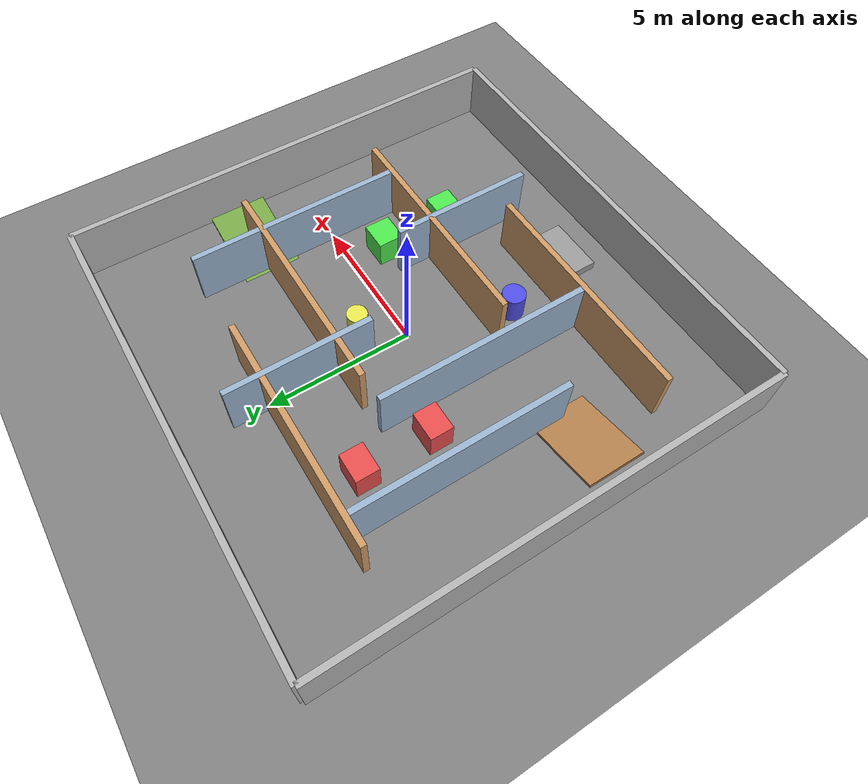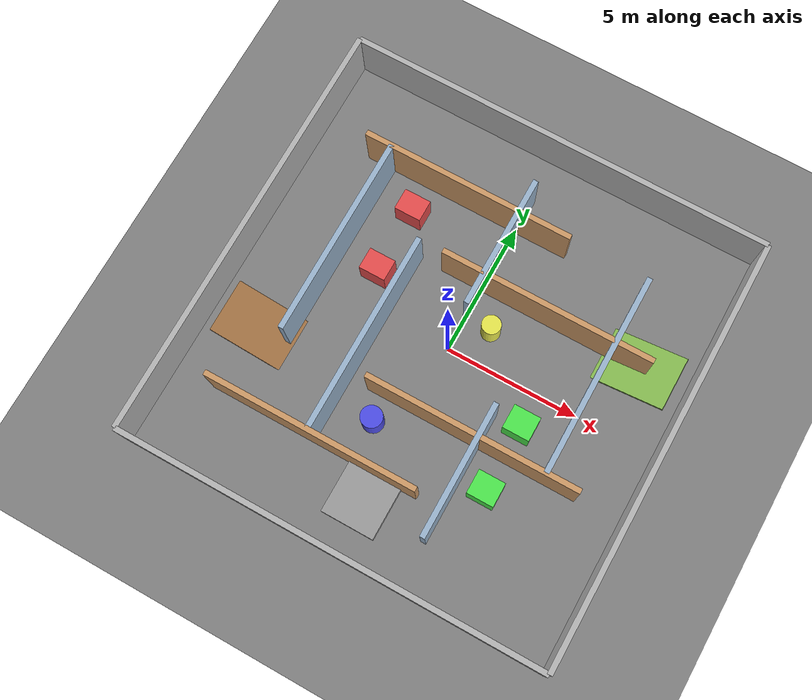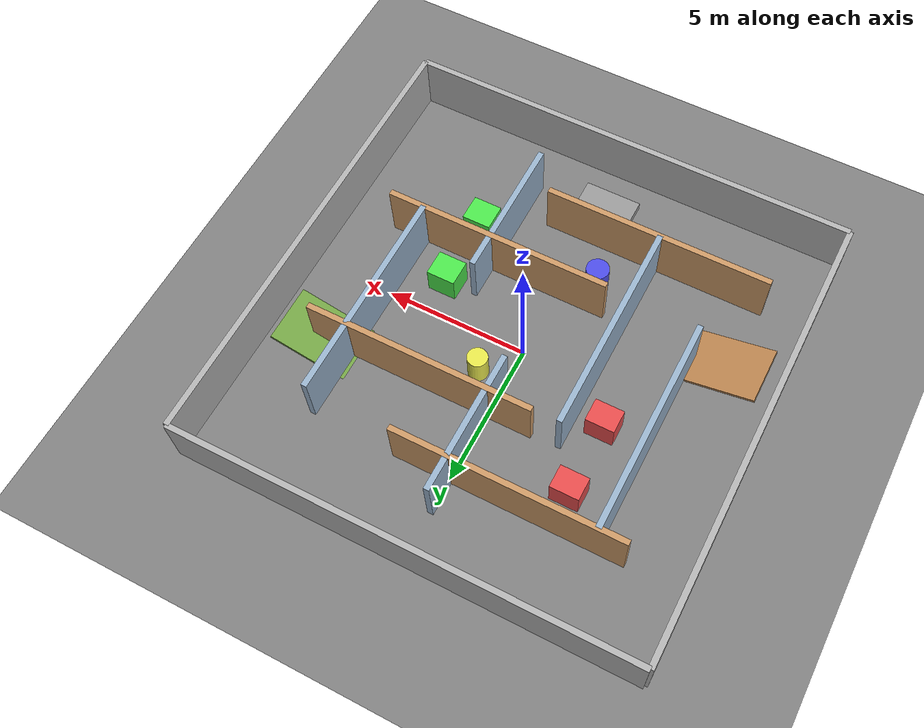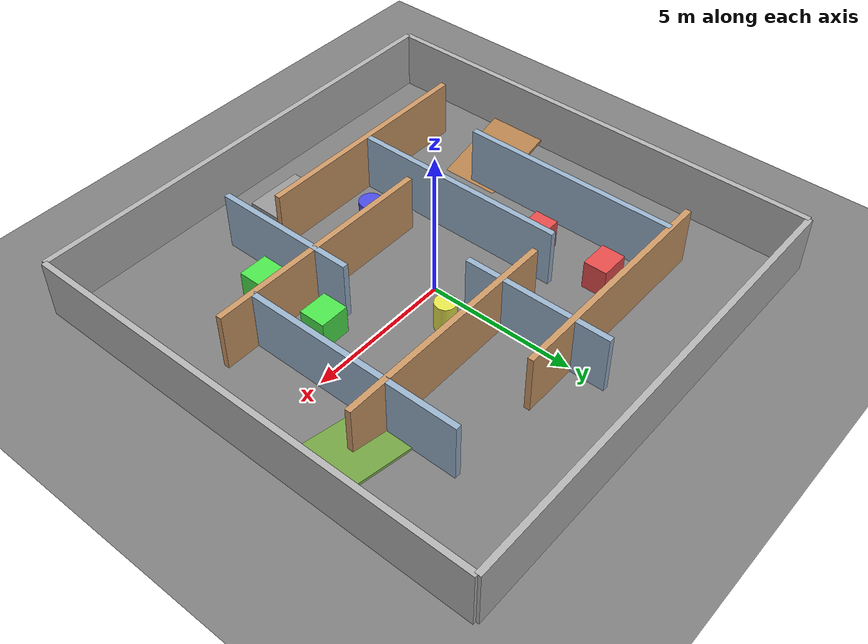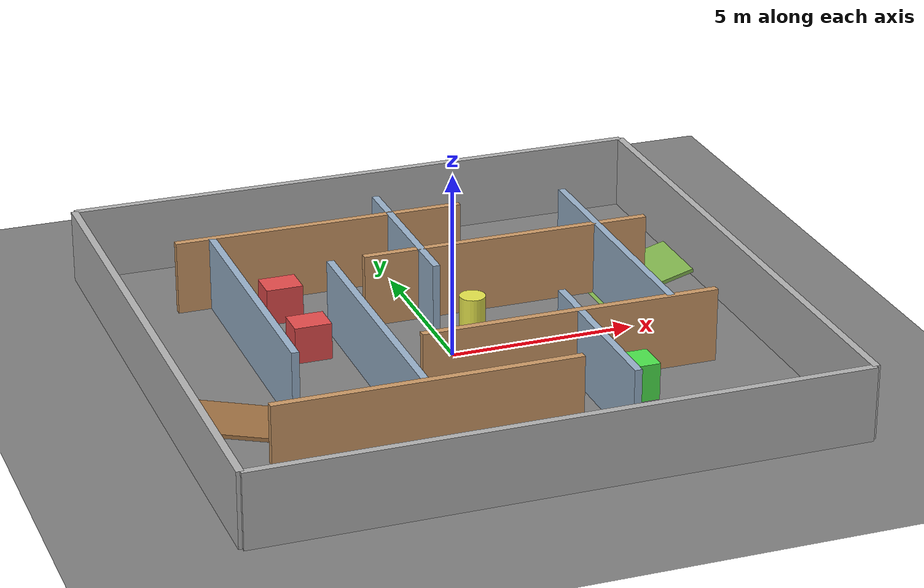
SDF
<?xml version="1.0" ?>
<sdf version="1.8">
  <world name="maze_world">
    <physics name="1ms" type="bullet-featherstone">
      <max_step_size>0.001</max_step_size>
      <real_time_factor>1.0</real_time_factor>
    </physics>

    <!-- Plugins -->
    <plugin
      filename="gz-sim-physics-system"
      name="gz::sim::systems::Physics">
    </plugin>
    <plugin
      filename="gz-sim-sensors-system"
      name="gz::sim::systems::Sensors">
      <render_engine>ogre2</render_engine>
    </plugin>
    <plugin
      filename="gz-sim-user-commands-system"
      name="gz::sim::systems::UserCommands">
    </plugin>
    <plugin
      filename="gz-sim-scene-broadcaster-system"
      name="gz::sim::systems::SceneBroadcaster">
    </plugin>

    <!-- Lights -->
    <light type="directional" name="sun">
      <cast_shadows>true</cast_shadows>
      <pose>0 0 10 0 0 0</pose>
      <diffuse>0.8 0.8 0.8 1</diffuse>
      <specular>0.2 0.2 0.2 1</specular>
      <attenuation>
        <range>1000</range>
        <constant>0.9</constant>
        <linear>0.01</linear>
        <quadratic>0.001</quadratic>
      </attenuation>
      <direction>-0.5 0.1 -0.9</direction>
    </light>

    <!-- Ground Plane -->
    <model name="ground_plane">
      <static>true</static>
      <link name="link">
        <collision name="collision">
          <geometry>
            <plane>
              <normal>0 0 1</normal>
              <size>100 100</size>
            </plane>
          </geometry>
        </collision>
        <visual name="visual">
          <geometry>
            <plane>
              <normal>0 0 1</normal>
              <size>100 100</size>
            </plane>
          </geometry>
          <material>
            <ambient>0.5 0.5 0.5 1</ambient>
            <diffuse>0.5 0.5 0.5 1</diffuse>
            <specular>0.5 0.5 0.5 1</specular>
          </material>
        </visual>
      </link>
    </model>

    <!-- Outer Boundary Walls -->
    <!-- North Wall -->
    <model name="wall_north">
      <pose>0 8 1 0 0 0</pose>
      <static>true</static>
      <link name="link">
        <collision name="collision">
          <geometry>
            <box>
              <size>16 0.2 2</size>
            </box>
          </geometry>
        </collision>
        <visual name="visual">
          <geometry>
            <box>
              <size>16 0.2 2</size>
            </box>
          </geometry>
          <material>
            <ambient>0.7 0.7 0.7 1</ambient>
            <diffuse>0.7 0.7 0.7 1</diffuse>
            <specular>0.7 0.7 0.7 1</specular>
          </material>
        </visual>
      </link>
    </model>

    <!-- South Wall -->
    <model name="wall_south">
      <pose>0 -8 1 0 0 0</pose>
      <static>true</static>
      <link name="link">
        <collision name="collision">
          <geometry>
            <box>
              <size>16 0.2 2</size>
            </box>
          </geometry>
        </collision>
        <visual name="visual">
          <geometry>
            <box>
              <size>16 0.2 2</size>
            </box>
          </geometry>
          <material>
            <ambient>0.7 0.7 0.7 1</ambient>
            <diffuse>0.7 0.7 0.7 1</diffuse>
            <specular>0.7 0.7 0.7 1</specular>
          </material>
        </visual>
      </link>
    </model>

    <!-- East Wall -->
    <model name="wall_east">
      <pose>8 0 1 0 0 0</pose>
      <static>true</static>
      <link name="link">
        <collision name="collision">
          <geometry>
            <box>
              <size>0.2 16 2</size>
            </box>
          </geometry>
        </collision>
        <visual name="visual">
          <geometry>
            <box>
              <size>0.2 16 2</size>
            </box>
          </geometry>
          <material>
            <ambient>0.7 0.7 0.7 1</ambient>
            <diffuse>0.7 0.7 0.7 1</diffuse>
            <specular>0.7 0.7 0.7 1</specular>
          </material>
        </visual>
      </link>
    </model>

    <!-- West Wall -->
    <model name="wall_west">
      <pose>-8 0 1 0 0 0</pose>
      <static>true</static>
      <link name="link">
        <collision name="collision">
          <geometry>
            <box>
              <size>0.2 16 2</size>
            </box>
          </geometry>
        </collision>
        <visual name="visual">
          <geometry>
            <box>
              <size>0.2 16 2</size>
            </box>
          </geometry>
          <material>
            <ambient>0.7 0.7 0.7 1</ambient>
            <diffuse>0.7 0.7 0.7 1</diffuse>
            <specular>0.7 0.7 0.7 1</specular>
          </material>
        </visual>
      </link>
    </model>

    <!-- Maze Interior Walls - Creating narrow corridors -->
    <!-- Horizontal Wall 1 (Top section) -->
    <model name="maze_wall_h1">
      <pose>-2 5 1 0 0 0</pose>
      <static>true</static>
      <link name="link">
        <collision name="collision">
          <geometry>
            <box>
              <size>8 0.2 2</size>
            </box>
          </geometry>
        </collision>
        <visual name="visual">
          <geometry>
            <box>
              <size>8 0.2 2</size>
            </box>
          </geometry>
          <material>
            <ambient>0.8 0.6 0.4 1</ambient>
            <diffuse>0.8 0.6 0.4 1</diffuse>
            <specular>0.8 0.6 0.4 1</specular>
          </material>
        </visual>
      </link>
    </model>

    <!-- Horizontal Wall 2 -->
    <model name="maze_wall_h2">
      <pose>2.412 2.5 1 0 0 0</pose>
      <static>true</static>
      <link name="link">
        <collision name="collision">
          <geometry>
            <box>
              <size>8 0.2 2</size>
            </box>
          </geometry>
        </collision>
        <visual name="visual">
          <geometry>
            <box>
              <size>8 0.2 2</size>
            </box>
          </geometry>
          <material>
            <ambient>0.8 0.6 0.4 1</ambient>
            <diffuse>0.8 0.6 0.4 1</diffuse>
            <specular>0.8 0.6 0.4 1</specular>
          </material>
        </visual>
      </link>
    </model>

    <!-- Horizontal Wall 3 - REMOVED to keep origin clear for robot spawn -->

    <!-- Horizontal Wall 4 -->
    <model name="maze_wall_h4">
      <pose>2.265 -2.5 1 0 0 0</pose>
      <static>true</static>
      <link name="link">
        <collision name="collision">
          <geometry>
            <box>
              <size>8 0.2 2</size>
            </box>
          </geometry>
        </collision>
        <visual name="visual">
          <geometry>
            <box>
              <size>8 0.2 2</size>
            </box>
          </geometry>
          <material>
            <ambient>0.8 0.6 0.4 1</ambient>
            <diffuse>0.8 0.6 0.4 1</diffuse>
            <specular>0.8 0.6 0.4 1</specular>
          </material>
        </visual>
      </link>
    </model>

    <!-- Horizontal Wall 5 (Bottom section) -->
    <model name="maze_wall_h5">
      <pose>-2.415 -5 1 0 0 0</pose>
      <static>true</static>
      <link name="link">
        <collision name="collision">
          <geometry>
            <box>
              <size>8 0.2 2</size>
            </box>
          </geometry>
        </collision>
        <visual name="visual">
          <geometry>
            <box>
              <size>8 0.2 2</size>
            </box>
          </geometry>
          <material>
            <ambient>0.8 0.6 0.4 1</ambient>
            <diffuse>0.8 0.6 0.4 1</diffuse>
            <specular>0.8 0.6 0.4 1</specular>
          </material>
        </visual>
      </link>
    </model>

    <!-- Vertical Wall 1 (Left section) -->
    <model name="maze_wall_v1">
      <pose>-5 1.25 1 0 0 0</pose>
      <static>true</static>
      <link name="link">
        <collision name="collision">
          <geometry>
            <box>
              <size>0.2 7.5 2</size>
            </box>
          </geometry>
        </collision>
        <visual name="visual">
          <geometry>
            <box>
              <size>0.2 7.5 2</size>
            </box>
          </geometry>
          <material>
            <ambient>0.6 0.7 0.8 1</ambient>
            <diffuse>0.6 0.7 0.8 1</diffuse>
            <specular>0.6 0.7 0.8 1</specular>
          </material>
        </visual>
      </link>
    </model>

    <!-- Vertical Wall 2 -->
    <model name="maze_wall_v2">
      <pose>-2.5 -1.25 1 0 0 0</pose>
      <static>true</static>
      <link name="link">
        <collision name="collision">
          <geometry>
            <box>
              <size>0.2 7.5 2</size>
            </box>
          </geometry>
        </collision>
        <visual name="visual">
          <geometry>
            <box>
              <size>0.2 7.5 2</size>
            </box>
          </geometry>
          <material>
            <ambient>0.6 0.7 0.8 1</ambient>
            <diffuse>0.6 0.7 0.8 1</diffuse>
            <specular>0.6 0.7 0.8 1</specular>
          </material>
        </visual>
      </link>
    </model>

    <!-- Vertical Wall 3 (Center) -->
    <model name="maze_wall_v3">
      <pose>0 3.75 1 0 0 0</pose>
      <static>true</static>
      <link name="link">
        <collision name="collision">
          <geometry>
            <box>
              <size>0.2 5 2</size>
            </box>
          </geometry>
        </collision>
        <visual name="visual">
          <geometry>
            <box>
              <size>0.2 5 2</size>
            </box>
          </geometry>
          <material>
            <ambient>0.6 0.7 0.8 1</ambient>
            <diffuse>0.6 0.7 0.8 1</diffuse>
            <specular>0.6 0.7 0.8 1</specular>
          </material>
        </visual>
      </link>
    </model>

    <!-- Vertical Wall 4 -->
    <model name="maze_wall_v4">
      <pose>2.5 -3.75 1 0 0 0</pose>
      <static>true</static>
      <link name="link">
        <collision name="collision">
          <geometry>
            <box>
              <size>0.2 5 2</size>
            </box>
          </geometry>
        </collision>
        <visual name="visual">
          <geometry>
            <box>
              <size>0.2 5 2</size>
            </box>
          </geometry>
          <material>
            <ambient>0.6 0.7 0.8 1</ambient>
            <diffuse>0.6 0.7 0.8 1</diffuse>
            <specular>0.6 0.7 0.8 1</specular>
          </material>
        </visual>
      </link>
    </model>

    <!-- Vertical Wall 5 (Right section) -->
    <model name="maze_wall_v5">
      <pose>5 1.25 1 0 0 0</pose>
      <static>true</static>
      <link name="link">
        <collision name="collision">
          <geometry>
            <box>
              <size>0.2 7.5 2</size>
            </box>
          </geometry>
        </collision>
        <visual name="visual">
          <geometry>
            <box>
              <size>0.2 7.5 2</size>
            </box>
          </geometry>
          <material>
            <ambient>0.6 0.7 0.8 1</ambient>
            <diffuse>0.6 0.7 0.8 1</diffuse>
            <specular>0.6 0.7 0.8 1</specular>
          </material>
        </visual>
      </link>
    </model>

    <!-- Narrow Corridor Obstacles - Testing tight spaces -->
    <!-- Narrow passage 1 (0.9m wide) -->
    <model name="narrow_obstacle_1a">
      <pose>-3.5 3.75 0.5 0 0 0</pose>
      <static>true</static>
      <link name="link">
        <collision name="collision">
          <geometry>
            <box>
              <size>1 0.8 1</size>
            </box>
          </geometry>
        </collision>
        <visual name="visual">
          <geometry>
            <box>
              <size>1 0.8 1</size>
            </box>
          </geometry>
          <material>
            <ambient>0.9 0.3 0.3 1</ambient>
            <diffuse>0.9 0.3 0.3 1</diffuse>
            <specular>0.9 0.3 0.3 1</specular>
          </material>
        </visual>
      </link>
    </model>

    <model name="narrow_obstacle_1b">
      <pose>-3.5 1.25 0.5 0 0 0</pose>
      <static>true</static>
      <link name="link">
        <collision name="collision">
          <geometry>
            <box>
              <size>1 0.8 1</size>
            </box>
          </geometry>
        </collision>
        <visual name="visual">
          <geometry>
            <box>
              <size>1 0.8 1</size>
            </box>
          </geometry>
          <material>
            <ambient>0.9 0.3 0.3 1</ambient>
            <diffuse>0.9 0.3 0.3 1</diffuse>
            <specular>0.9 0.3 0.3 1</specular>
          </material>
        </visual>
      </link>
    </model>

    <!-- Narrow passage 2 (0.85m wide) -->
    <model name="narrow_obstacle_2a">
      <pose>3.5 -1.25 0.5 0 0 0</pose>
      <static>true</static>
      <link name="link">
        <collision name="collision">
          <geometry>
            <box>
              <size>1 0.9 1</size>
            </box>
          </geometry>
        </collision>
        <visual name="visual">
          <geometry>
            <box>
              <size>1 0.9 1</size>
            </box>
          </geometry>
          <material>
            <ambient>0.3 0.9 0.3 1</ambient>
            <diffuse>0.3 0.9 0.3 1</diffuse>
            <specular>0.3 0.9 0.3 1</specular>
          </material>
        </visual>
      </link>
    </model>

    <model name="narrow_obstacle_2b">
      <pose>3.5 -3.75 0.5 0 0 0</pose>
      <static>true</static>
      <link name="link">
        <collision name="collision">
          <geometry>
            <box>
              <size>1 0.9 1</size>
            </box>
          </geometry>
        </collision>
        <visual name="visual">
          <geometry>
            <box>
              <size>1 0.9 1</size>
            </box>
          </geometry>
          <material>
            <ambient>0.3 0.9 0.3 1</ambient>
            <diffuse>0.3 0.9 0.3 1</diffuse>
            <specular>0.3 0.9 0.3 1</specular>
          </material>
        </visual>
      </link>
    </model>

    <!-- Cylindrical obstacles for variety -->
    <model name="cylinder_obstacle_1">
      <pose>-1 -3.5 0.5 0 0 0</pose>
      <static>true</static>
      <link name="link">
        <collision name="collision">
          <geometry>
            <cylinder>
              <radius>0.4</radius>
              <length>1.0</length>
            </cylinder>
          </geometry>
        </collision>
        <visual name="visual">
          <geometry>
            <cylinder>
              <radius>0.4</radius>
              <length>1.0</length>
            </cylinder>
          </geometry>
          <material>
            <ambient>0.3 0.3 0.9 1</ambient>
            <diffuse>0.3 0.3 0.9 1</diffuse>
            <specular>0.3 0.3 0.9 1</specular>
          </material>
        </visual>
      </link>
    </model>

    <model name="cylinder_obstacle_2">
      <pose>1 1.25 0.5 0 0 0</pose>
      <static>true</static>
      <link name="link">
        <collision name="collision">
          <geometry>
            <cylinder>
              <radius>0.35</radius>
              <length>1.0</length>
            </cylinder>
          </geometry>
        </collision>
        <visual name="visual">
          <geometry>
            <cylinder>
              <radius>0.35</radius>
              <length>1.0</length>
            </cylinder>
          </geometry>
          <material>
            <ambient>0.9 0.9 0.3 1</ambient>
            <diffuse>0.9 0.9 0.3 1</diffuse>
            <specular>0.9 0.9 0.3 1</specular>
          </material>
        </visual>
      </link>
    </model>

    <!-- Ramps/Slopes for testing inclined terrain navigation -->
    <!-- Upward Ramp (West side) - 15 degree incline -->
    <model name="ramp_upward">
      <pose>-6 -2.5 0.25 0 0.262 0</pose>  <!-- 0.262 radians = 15 degrees -->
      <static>true</static>
      <link name="link">
        <collision name="collision">
          <geometry>
            <box>
              <size>3 2 0.1</size>
            </box>
          </geometry>
        </collision>
        <visual name="visual">
          <geometry>
            <box>
              <size>3 2 0.1</size>
            </box>
          </geometry>
          <material>
            <ambient>0.7 0.5 0.3 1</ambient>
            <diffuse>0.7 0.5 0.3 1</diffuse>
            <specular>0.7 0.5 0.3 1</specular>
          </material>
        </visual>
      </link>
    </model>

    <!-- Downward Ramp (East side) - 15 degree decline -->
    <model name="ramp_downward">
      <pose>6 2.5 0.25 0 -0.262 0</pose>  <!-- -0.262 radians = -15 degrees -->
      <static>true</static>
      <link name="link">
        <collision name="collision">
          <geometry>
            <box>
              <size>3 2 0.1</size>
            </box>
          </geometry>
        </collision>
        <visual name="visual">
          <geometry>
            <box>
              <size>3 2 0.1</size>
            </box>
          </geometry>
          <material>
            <ambient>0.5 0.7 0.3 1</ambient>
            <diffuse>0.5 0.7 0.3 1</diffuse>
            <specular>0.5 0.7 0.3 1</specular>
          </material>
        </visual>
      </link>
    </model>

    <!-- Small step/platform for variety -->
    <model name="step_platform">
      <pose>0 -6 0.15 0 0 0</pose>
      <static>true</static>
      <link name="link">
        <collision name="collision">
          <geometry>
            <box>
              <size>2 2 0.3</size>
            </box>
          </geometry>
        </collision>
        <visual name="visual">
          <geometry>
            <box>
              <size>2 2 0.3</size>
            </box>
          </geometry>
          <material>
            <ambient>0.6 0.6 0.6 1</ambient>
            <diffuse>0.6 0.6 0.6 1</diffuse>
            <specular>0.6 0.6 0.6 1</specular>
          </material>
        </visual>
      </link>
    </model>

  </world>
</sdf>
